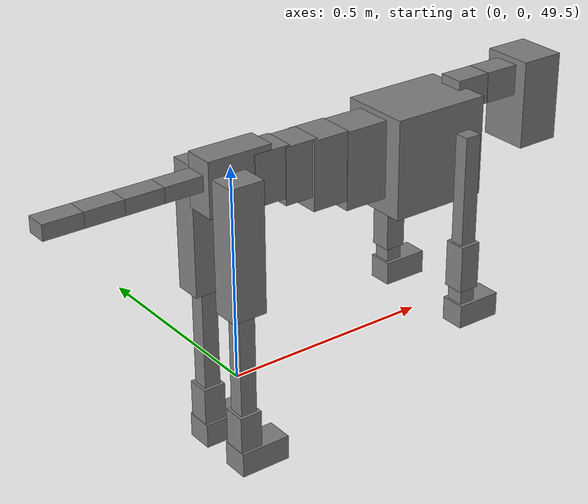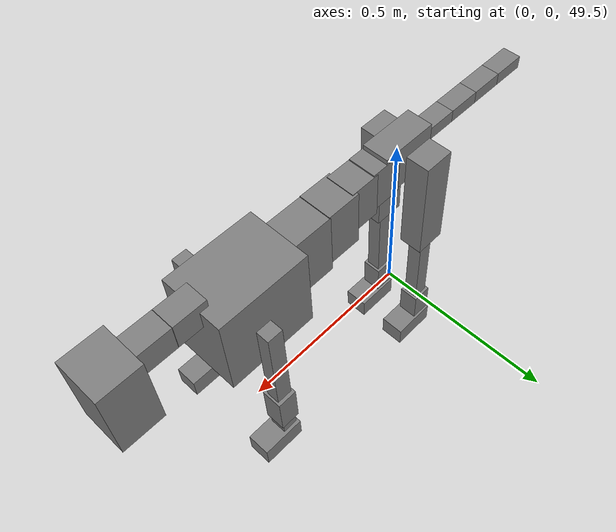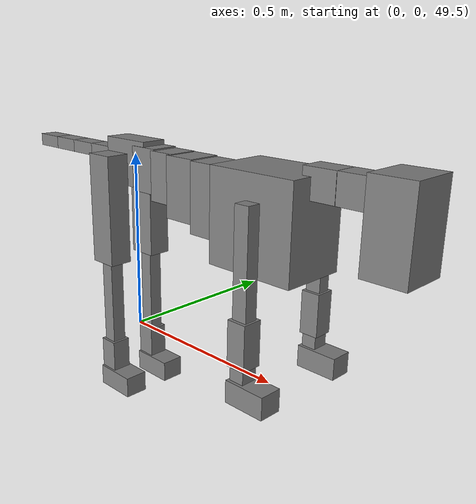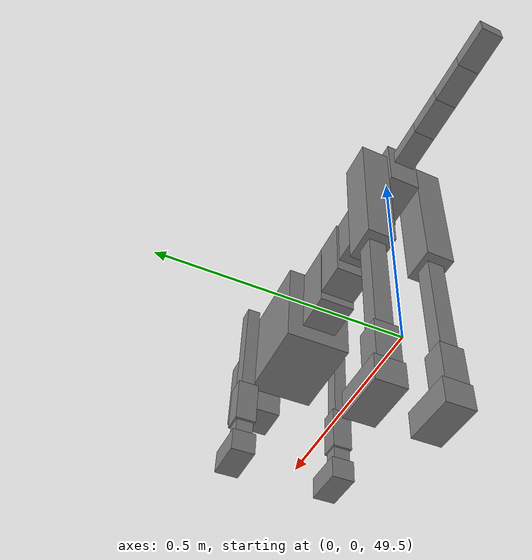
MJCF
<mujoco model="dog">

    <default>
        <joint armature="0.02" stiffness="1" damping="0.2" limited="true"/>
        <geom condim="3" friction="1 0.05 0.05" margin="0.01"/>
        <motor ctrllimited="true" ctrlrange="-1.0 1.0" forcelimited="true" gear="50"/>
    </default>

    <compiler inertiafromgeom="true" angle="radian"/>

    <option timestep="0.016" iterations="50" tolerance="1e-10" solver="Newton" jacobian="dense" cone="pyramidal"/>

    <size nconmax="20000" njmax="60000" nstack="5000000"/>
    <visual>
        <map force="0.1" zfar="30"/>
        <rgba haze="0.15 0.25 0.35 1"/>
        <quality shadowsize="2048"/>
        <global offwidth="800" offheight="800"/>
    </visual>

    <asset>
        <texture type="skybox" builtin="gradient" rgb1="0.3 0.5 0.7" rgb2="0 0 0" width="512" height="512"/>
        <texture name="texplane" type="2d" builtin="checker" rgb1=".2 .3 .4" rgb2=".1 0.15 0.2" width="512" height="512"
                 mark="cross" markrgb=".8 .8 .8"/>
        <texture name="texgeom" type="cube" builtin="flat" mark="cross" width="127" height="1278" rgb1="0.8 0.6 0.4"
                 rgb2="0.8 0.6 0.4" markrgb="1 1 1" random="0.01"/>

        <material name="matplane" reflectance="0.3" texture="texplane" texrepeat="1 1" texuniform="true"/>
        <material name="matgeom" texture="texgeom" texuniform="true" rgba="0.8 0.6 .4 1"/>
    </asset>

    <worldbody>
        <geom name="floor" pos="0 0 0" size="0 0 .25" type="plane" material="matplane" condim="3"/>

        <light directional="false" diffuse=".2 .2 .2" specular="0 0 0" pos="0 0 5" dir="0 0 -1" castshadow="false"/>
        <light mode="targetbodycom" target="torso" directional="false" diffuse=".8 .8 .8" specular="0.3 0.3 0.3"
               pos="0 0 4.0" dir="0 0 -1"/>

        <body name="root" pos="0 0 50">
            <freejoint name="root_1"/>
            <geom type="box" pos="0 0 -0.02" size="0.0774  0.0358  0.063" density="2030"/>

            <body name="spine1" pos="0.054 0 0">
                <joint name="spine1_y" axis="0 1 0" range="0 0.7" limited="true"/>
                <geom type="box" pos="0.02375 0 -0.03" size="0.04375  0.0375  0.05985" density="2030"/>

                <body name="spine2" pos="0.0612 0 0">
                    <joint name="spine2_y" axis="0 1 0" range="-0.15 0.15" limited="true"/>
                    <geom type="box" pos="0.03555  0  -0.04" size="0.04055  0.039  0.06615" density="2030"/>

                    <body name="spine3" pos="0.0730 0 0">
                        <joint name="spine3_y" axis="0 1 0" range="-0.15 0.15" limited="true"/>
                        <geom type="box" pos="0.03555  0  -0.057" size="0.04555  0.0445  0.081" density="2030"/>

                        <body name="spine4" pos="0.0780 0 0">
                            <joint name="spine4_y" axis="0 1 0" range="-0.15 0.15" limited="true"/>
                            <geom type="box" pos="0.05265  0  -0.07" size="0.05265  0.045  0.09135" density="2030"/>

                            <body name="torso" pos="0.1082 0 0">
                                <joint name="torso_y" axis="0 1 0" range="-0.15 0.15" limited="true"/>
                                <geom type="box" pos="0.11925  0  -0.085" size="0.11925  0.085  0.11745"
                                      density="2030"/>

                                <body name="neck1" pos="0.2160  0   0.0180">
                                    <joint name="neck1_y" axis="0 1 0" range="-1.2  -1" limited="true"/>
                                    <geom type="box" pos="0.0423  0  0" size="0.0423  0.03  0.036" density="2325"/>

                                    <body name="neck2" pos="0.0853  0  0">
                                        <joint name="neck2_y" axis="0 1 0" range="0.1  0" limited="true"/>
                                        <geom type="box" pos="0.0423  0  0" size="0.0423  0.03  0.036" density="2325"/>

                                        <body name="head" pos="0.0853  0  0">
                                            <joint name="head_y" axis="0 1 0" range="-0.3  -0.2" limited="true"/>
                                            <geom type="box" pos="0.0531  0  -0.055" size="0.0531  0.06  0.1044"
                                                  density="4030"/>

                                        </body>
                                    </body>
                                </body>

                                <body name="front_shoulder" pos="0.156  0   -0.0480">
                                    <joint name="front_shoulder_y" axis="0 1 0" range="-1 1.5" limited="true"/>
                                    <geom type="box" pos="0 0.13 -0.1168" size="0.0197  0.0169  0.1434" density="1158"/>
                                    <geom type="box" pos="0 -0.13 -0.1168" size="0.0197  0.0169  0.1434"
                                          density="1158"/>

                                    <body name="front_elbow" pos="0  0  -0.2335">
                                        <joint name="front_elbow_y" axis="0 1 0" range="-2 0" limited="true"/>
                                        <geom type="box" pos="0 0.13 -0.0560" size="0.0251  0.0257  0.0560"
                                              density="1081"/>
                                        <geom type="box" pos="0 -0.13 -0.0560" size="0.0251  0.0257  0.0560"
                                              density="1081"/>

                                        <body name="front_wrist" pos="0  0  -0.1120">
                                            <joint name="front_wrist_y" axis="0 1 0" range="-0.2 0" limited="true"/>
                                            <geom type="box" pos="0 0.13 -0.0247" size="0.0193  0.0214  0.0379"
                                                  density="1664"/>
                                            <geom type="box" pos="0 -0.13 -0.0247" size="0.0193  0.0214  0.0379"
                                                  density="1664"/>

                                            <body name="front_finger_end" pos="0  0  -0.0495">
                                                <joint name="front_finger_y" axis="0 1 0" range="-0.4 1"
                                                       limited="true"/>
                                                <geom type="box" pos="0.0296  0.13  -0.0131"
                                                      size="0.0542  0.0296  0.0281" density="1515"/>
                                                <geom type="box" pos="0.0296  -0.13  -0.0131"
                                                      size="0.0542  0.0296  0.0281" density="1515"/>

                                            </body>

                                        </body>
                                    </body>
                                </body>

                            </body>
                        </body>
                    </body>
                </body>
            </body>

            <body name="back_hip" pos="-0.03 0 -0.018">
                <joint name="back_hip_y" axis="0 1 0" range="-1.5 0.3" limited="true"/>
                <geom type="box" pos="0 0.07 -0.1293" size="0.0411  0.0323  0.1521" density="1154"/>
                <geom type="box" pos="0 -0.07 -0.1293" size="0.0411  0.0323  0.1521" density="1154"/>

                <body name="back_knee" pos="0  0  -0.2586">
                    <joint name="back_knee_y" axis="0 1 0" range="0 2.8" limited="true"/>
                    <geom type="box" pos="0 0.07 -0.1367" size="0.0198  0.0195  0.1522" density="1227"/>
                    <geom type="box" pos="0 -0.07 -0.1367" size="0.0198  0.0195  0.1522" density="1227"/>

                    <body name="back_ankle" pos="0  0  -0.2734">
                        <joint name="back_ankle_y" axis="0 1 0" range="-2.2 0" limited="true"/>
                        <geom type="box" pos="0 0.07 -0.0456" size="0.0269  0.0269  0.0568" density="1284"/>
                        <geom type="box" pos="0 -0.07 -0.0456" size="0.0269  0.0269  0.0568" density="1284"/>

                        <body name="back_toe_end" pos="0  0  -0.0912">
                            <joint name="back_toe_y" axis="0 1 0" range="-0.4 1" limited="true"/>
                            <geom type="box" pos="0.0328  0.07  -0.0141" size="0.0601  0.0328  0.0291" density="1515"/>
                            <geom type="box" pos="0.0328  -0.07  -0.0141" size="0.0601  0.0328  0.0291" density="1515"/>

                        </body>
                    </body>
                </body>
            </body>

            <body name="tail1" pos="-0.074 0 -0.006">
                <joint name="tail1_y" axis="0 1 0" range="-0.2 0.2" limited="true"/>
                <geom type="box" pos="-0.0536  0  0" size="0.045  0.025  0.0175" density="1587"/>

                <body name="tail2" pos="-0.09 0 0">
                    <joint name="tail2_y" axis="0 1 0" range="-0.2 0.2" limited="true"/>
                    <geom type="box" pos="-0.0536  0  0" size="0.045  0.025  0.0175" density="1587"/>

                    <body name="tail3" pos="-0.09 0 0">
                        <joint name="tail3_y" axis="0 1 0" range="-0.2 0.2" limited="true"/>
                        <geom type="box" pos="-0.0536  0  0" size="0.045  0.025  0.0175" density="1587"/>

                        <body name="tail4" pos="-0.09 0 0">
                            <joint name="tail4_y" axis="0 1 0" range="-0.2 0.2" limited="true"/>
                            <geom type="box" pos="-0.0536  0  0" size="0.045  0.025  0.0175" density="1587"/>

                        </body>
                    </body>
                </body>
            </body>
        </body>
    </worldbody>

    <actuator>
        <motor joint="spine1_y" forcerange="-150 150     "/>
        <motor joint="spine2_y" forcerange="-150 150     "/>
        <motor joint="spine3_y" forcerange="-150 150     "/>
        <motor joint="spine4_y" forcerange="-150 150     "/>
        <motor joint="torso_y" forcerange="-150 150     "/>
        <motor joint="neck1_y" forcerange="-100 100       "/>
        <motor joint="neck2_y" forcerange="-100 100       "/>
        <motor joint="head_y" forcerange="-150 150       "/>
        <motor joint="front_shoulder_y" forcerange="-100.95 111.48"/>
        <motor joint="front_elbow_y" forcerange="-126.25 160.43"/>
        <motor joint="front_wrist_y" forcerange="-111.83 59.70"/>
        <motor joint="front_finger_y" forcerange="-85.90 31.90"/>
        <motor joint="back_hip_y" forcerange="-359.64 270.51"/>
        <motor joint="back_knee_y" forcerange="-202.16 282.20"/>
        <motor joint="back_angle_y" forcerange="-156.54 173.62"/>
        <motor joint="back_toe_y" forcerange="-107.85 74.51"/>
        <motor joint="tail1_y" forcerange="-50 50     "/>
        <motor joint="tail2_y" forcerange="-50 50     "/>
        <motor joint="tail3_y" forcerange="-50 50     "/>
        <motor joint="tail4_y" forcerange="-50 50     "/>
    </actuator>
</mujoco>
